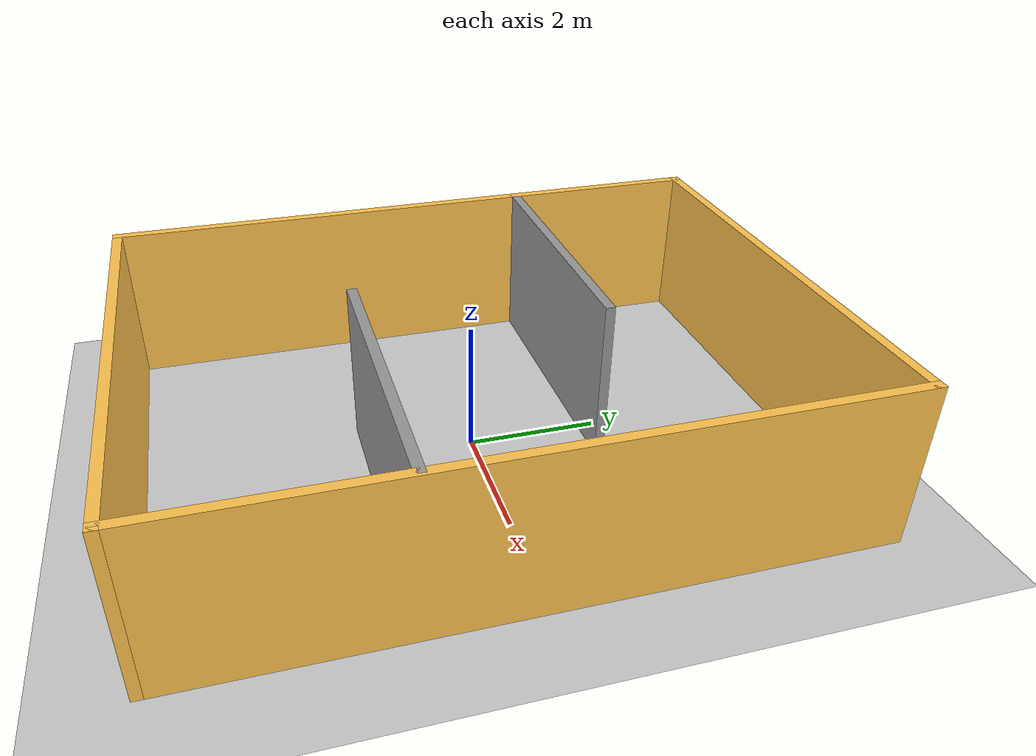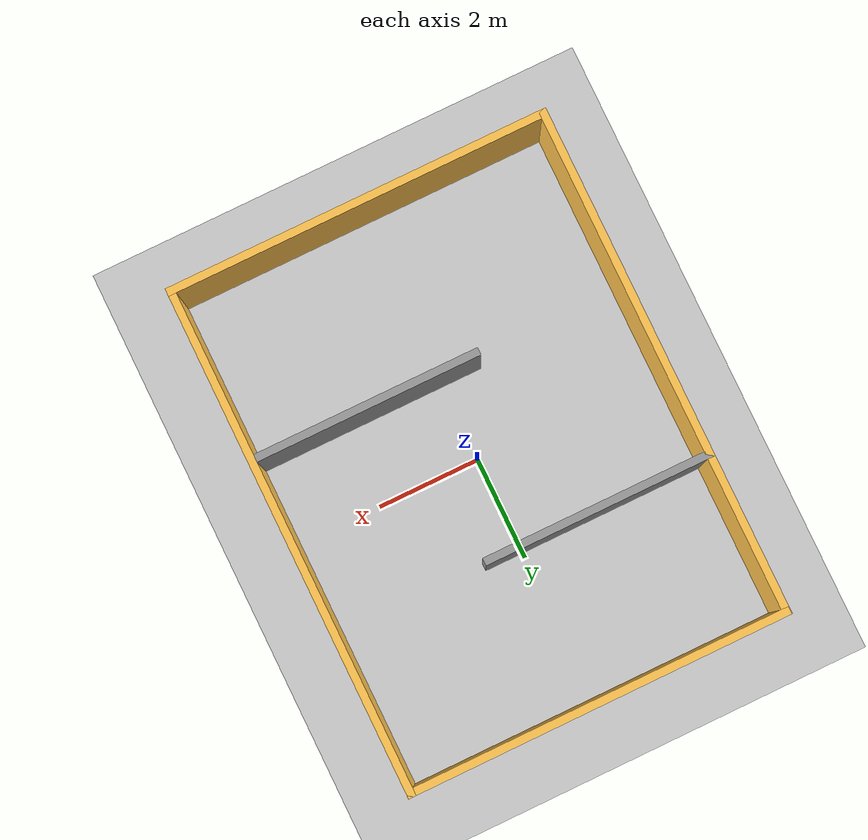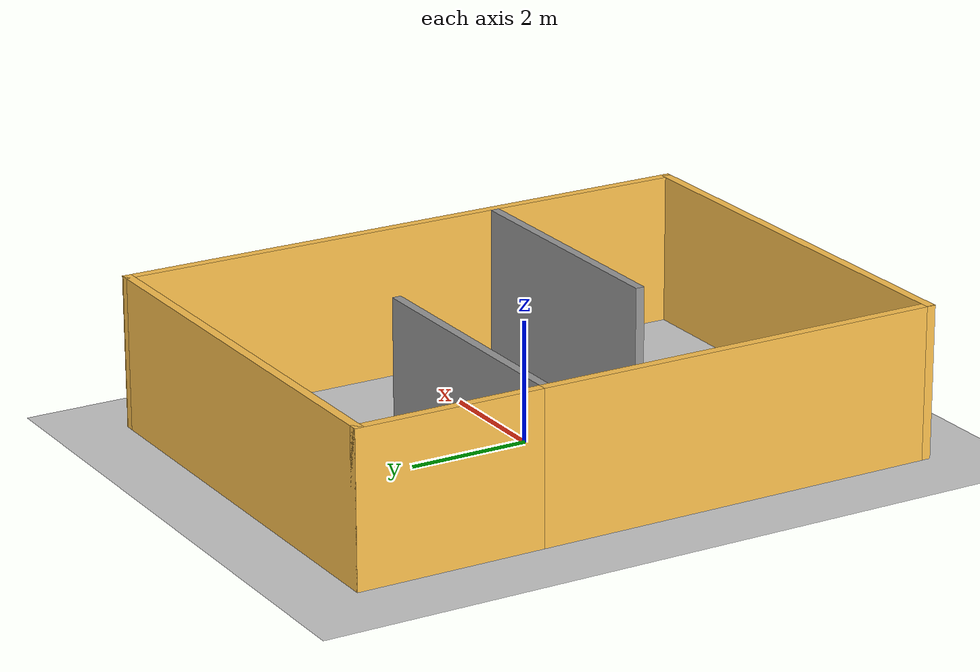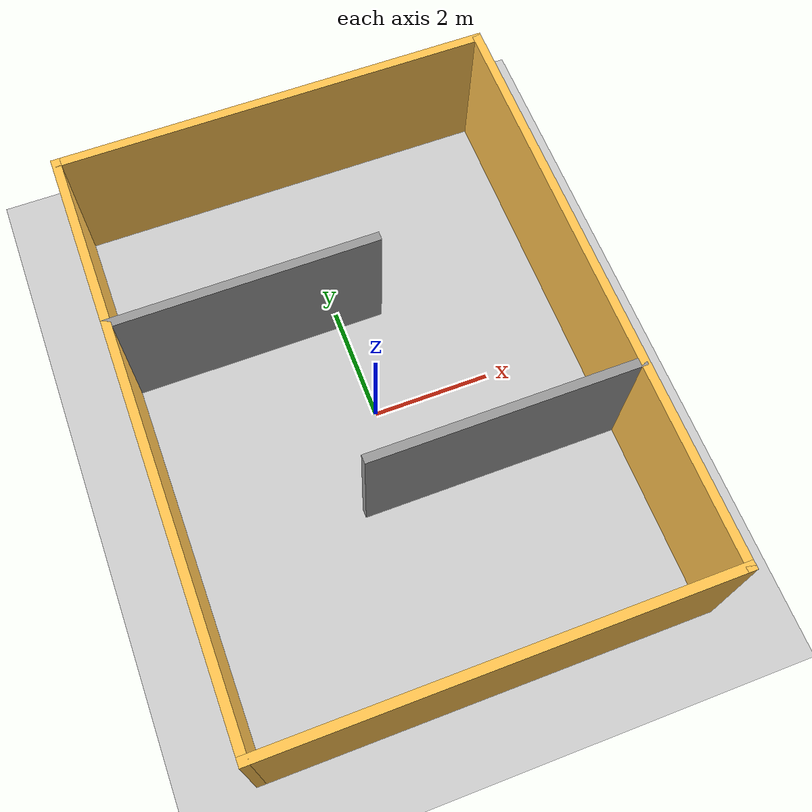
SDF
<?xml version="1.0"?>
<sdf version="1.5">
  <world name="default">
    <!-- Sun -->
    <include>
      <uri>model://sun</uri>
    </include>

    <!-- A ground plane -->
    <include>
      <uri>model://ground_plane</uri>
    </include>

    <!-- Stage 1 -->
    <include>
      <uri>model://stage1</uri>
      <name>stage1</name>
      <pose>0 0 0 0 0 0</pose>
    </include>

  </world>
</sdf>

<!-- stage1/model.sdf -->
<sdf version='1.7'>
  <model name='stage1'>
    <pose>1.33868 -3.13101 0 0 -0 0</pose>
    <link name='Wall_11'>
      <collision name='Wall_11_Collision'>
        <geometry>
          <box>
            <size>4.5 0.15 2.5</size>
          </box>
        </geometry>
        <pose>0 0 1.25 0 -0 0</pose>
      </collision>
      <visual name='Wall_11_Visual'>
        <pose>0 0 1.25 0 -0 0</pose>
        <geometry>
          <box>
            <size>4.5 0.15 2.5</size>
          </box>
        </geometry>
        <material>
          <script>
            <uri>file://media/materials/scripts/gazebo.material</uri>
            <name>Gazebo/Grey</name>
          </script>
          <ambient>1 1 1 1</ambient>
        </material>
        <meta>
          <layer>0</layer>
        </meta>
      </visual>
      <pose>1.45482 -1.58248 0 0 -0 3.14159</pose>
    </link>
    <link name='Wall_4'>
      <collision name='Wall_4_Collision'>
        <geometry>
          <box>
            <size>3.25 0.15 2.5</size>
          </box>
        </geometry>
        <pose>0 0 1.25 0 -0 0</pose>
      </collision>
      <visual name='Wall_4_Visual'>
        <pose>0 0 1.25 0 -0 0</pose>
        <geometry>
          <box>
            <size>3.25 0.15 2.5</size>
          </box>
        </geometry>
        <material>
          <script>
            <uri>file://media/materials/scripts/gazebo.material</uri>
            <name>Gazebo/Grey</name>
          </script>
          <ambient>1 0.764706 0.305882 1</ambient>
        </material>
        <meta>
          <layer>0</layer>
        </meta>
      </visual>
      <pose>-3.675 3.375 0 0 -0 1.5708</pose>
    </link>
    <link name='Wall_5'>
      <collision name='Wall_5_Collision'>
        <geometry>
          <box>
            <size>7.5 0.15 2.5</size>
          </box>
        </geometry>
        <pose>0 0 1.25 0 -0 0</pose>
      </collision>
      <visual name='Wall_5_Visual'>
        <pose>0 0 1.25 0 -0 0</pose>
        <geometry>
          <box>
            <size>7.5 0.15 2.5</size>
          </box>
        </geometry>
        <material>
          <script>
            <uri>file://media/materials/scripts/gazebo.material</uri>
            <name>Gazebo/Grey</name>
          </script>
          <ambient>1 0.764706 0.305882 1</ambient>
        </material>
        <meta>
          <layer>0</layer>
        </meta>
      </visual>
      <pose>-0 4.925 0 0 -0 0</pose>
    </link>
    <link name='Wall_6'>
      <collision name='Wall_6_Collision'>
        <geometry>
          <box>
            <size>10 0.15 2.5</size>
          </box>
        </geometry>
        <pose>0 0 1.25 0 -0 0</pose>
      </collision>
      <visual name='Wall_6_Visual'>
        <pose>0 0 1.25 0 -0 0</pose>
        <geometry>
          <box>
            <size>10 0.15 2.5</size>
          </box>
        </geometry>
        <material>
          <script>
            <uri>file://media/materials/scripts/gazebo.material</uri>
            <name>Gazebo/Grey</name>
          </script>
          <ambient>1 0.764706 0.305882 1</ambient>
        </material>
        <meta>
          <layer>0</layer>
        </meta>
      </visual>
      <pose>3.675 0 0 0 -0 -1.5708</pose>
    </link>
    <link name='Wall_7'>
      <collision name='Wall_7_Collision'>
        <geometry>
          <box>
            <size>7.5 0.15 2.5</size>
          </box>
        </geometry>
        <pose>0 0 1.25 0 -0 0</pose>
      </collision>
      <visual name='Wall_7_Visual'>
        <pose>0 0 1.25 0 -0 0</pose>
        <geometry>
          <box>
            <size>7.5 0.15 2.5</size>
          </box>
        </geometry>
        <material>
          <script>
            <uri>file://media/materials/scripts/gazebo.material</uri>
            <name>Gazebo/Grey</name>
          </script>
          <ambient>1 0.764706 0.305882 1</ambient>
        </material>
        <meta>
          <layer>0</layer>
        </meta>
      </visual>
      <pose>-0 -4.925 0 0 -0 3.14159</pose>
    </link>
    <link name='Wall_8'>
      <collision name='Wall_8_Collision'>
        <geometry>
          <box>
            <size>6.9 0.15 2.5</size>
          </box>
        </geometry>
        <pose>0 0 1.25 0 -0 0</pose>
      </collision>
      <visual name='Wall_8_Visual'>
        <pose>0 0 1.25 0 -0 0</pose>
        <geometry>
          <box>
            <size>6.9 0.15 2.5</size>
          </box>
        </geometry>
        <material>
          <script>
            <uri>file://media/materials/scripts/gazebo.material</uri>
            <name>Gazebo/Grey</name>
          </script>
          <ambient>1 0.764706 0.305882 1</ambient>
        </material>
        <meta>
          <layer>0</layer>
        </meta>
      </visual>
      <pose>-3.675 -1.55 0 0 -0 1.5708</pose>
    </link>
    <link name='Wall_9'>
      <collision name='Wall_9_Collision'>
        <geometry>
          <box>
            <size>4.5 0.15 2.5</size>
          </box>
        </geometry>
        <pose>0 0 1.25 0 -0 0</pose>
      </collision>
      <visual name='Wall_9_Visual'>
        <pose>0 0 1.25 0 -0 0</pose>
        <geometry>
          <box>
            <size>4.5 0.15 2.5</size>
          </box>
        </geometry>
        <material>
          <script>
            <uri>file://media/materials/scripts/gazebo.material</uri>
            <name>Gazebo/Grey</name>
          </script>
          <ambient>1 1 1 1</ambient>
        </material>
        <meta>
          <layer>0</layer>
        </meta>
      </visual>
      <pose>-1.5 1.825 0 0 -0 0</pose>
    </link>
    <static>1</static>
  </model>
</sdf>
